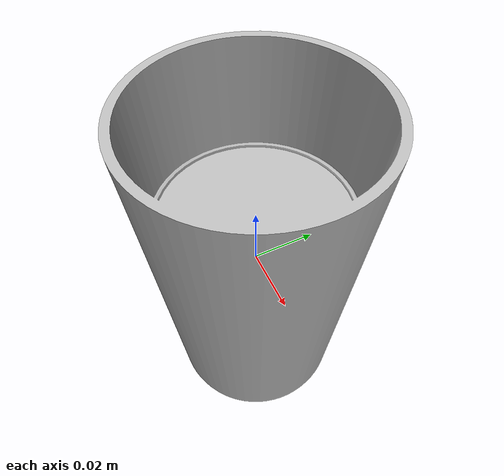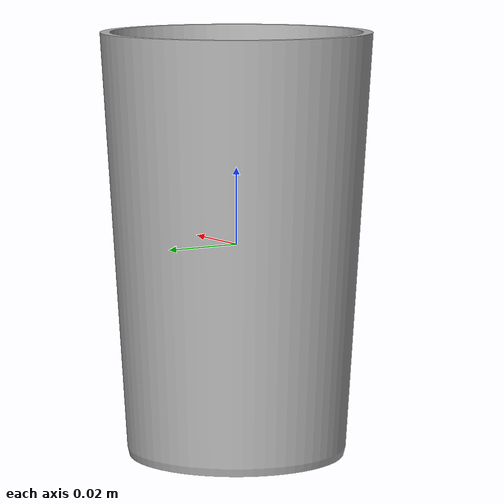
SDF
<?xml version="1.0" ?>
<sdf version="1.7">
	<model name="glass">
		<link name="base">
			<visual name="glass_visual">
				<pose>0 0 0 0 0 0</pose>
				<geometry>
					<mesh>
						<scale>1 1 1</scale>
						<uri>meshes/glass.obj</uri>
					</mesh>
				</geometry>
			</visual>
		</link>
	</model>
</sdf>
